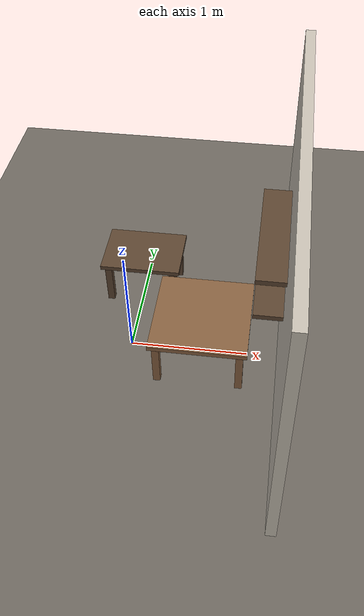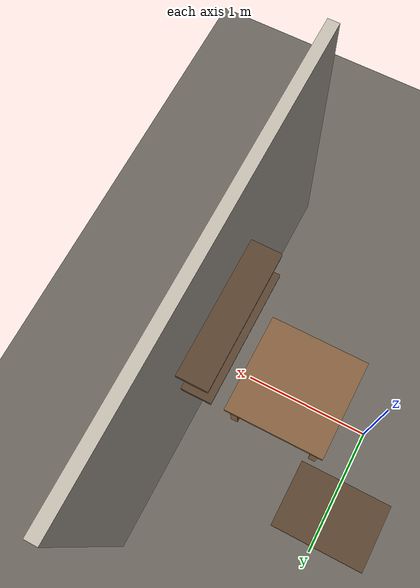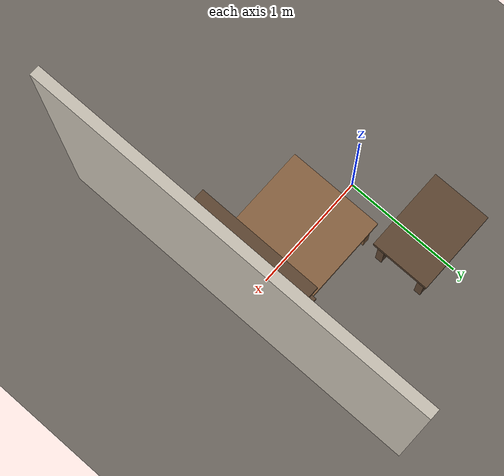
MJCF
<mujoco model="real_env_5_corner">
  <compiler angle="radian" autolimits="true" boundmass="0" balanceinertia="true"/>
  <option impratio="10" gravity="0 0 -9.8" integrator="implicitfast" cone="elliptic" jacobian="sparse" noslip_iterations="4">
    <flag multiccd="enable" contact="enable" warmstart="enable"/>
  </option>
  <size njmax="8000" nconmax="8000"/>
  <visual><global offwidth="1280" offheight="720"/><map znear="0.001"/>
    <headlight ambient="0.42 0.42 0.42" diffuse="0.55 0.55 0.55"/></visual>
  <asset>
    <texture name="woodtex" type="2d" builtin="flat" rgb1="0.53 0.38 0.25" width="32" height="32"/>
    <material name="wood" texture="woodtex" reflectance="0.05"/>
    <texture name="wood2tex" type="2d" builtin="flat" rgb1="0.36 0.27 0.19" width="32" height="32"/>
    <material name="wood2" texture="wood2tex" reflectance="0.05"/>
    <texture name="floortex" type="2d" builtin="checker" rgb1="0.46 0.44 0.41" rgb2="0.39 0.37 0.34" width="300" height="300"/>
    <material name="floormat" texture="floortex" texrepeat="10 10" reflectance="0.05"/>
  </asset>
  <default>
    <default class="furniture">
      <geom contype="8" conaffinity="15" group="0" friction="0.9 0.9 0.001"
            solref="0.02 1" solimp="0.998 0.998 0.001" density="700" material="wood"/>
    </default>
    <default class="furniture2">
      <geom contype="8" conaffinity="15" group="0" friction="0.9 0.9 0.001"
            solref="0.02 1" solimp="0.998 0.998 0.001" density="700" material="wood2"/>
    </default>
  </default>
  <worldbody>
    <light pos="0.3 0.5 2.6" dir="0 0 -1" diffuse="0.65 0.65 0.65"/>
    <light pos="-0.8 -0.8 2.2" dir="0.3 0.3 -1" diffuse="0.3 0.3 0.3"/>
    <geom name="floor" type="plane" size="5 5 0.1" pos="0 0 0" material="floormat" contype="8" conaffinity="15"/>
    <geom name="table_top" type="box" pos="0.62 0 0.44" size="0.4 0.4 0.02" class="furniture"/>
    <geom name="table_leg0" type="box" pos="0.96 0.34 0.21" size="0.03 0.03 0.21" class="furniture"/>
    <geom name="table_leg1" type="box" pos="0.96 -0.34 0.21" size="0.03 0.03 0.21" class="furniture"/>
    <geom name="table_leg2" type="box" pos="0.27999999999999997 0.34 0.21" size="0.03 0.03 0.21" class="furniture"/>
    <geom name="table_leg3" type="box" pos="0.27999999999999997 -0.34 0.21" size="0.03 0.03 0.21" class="furniture"/>
    <geom name="table_topb" type="box" pos="0.0 0.72 0.42" size="0.35 0.25 0.02" class="furniture2"/>
    <geom name="table_legb0" type="box" pos="0.29 0.9099999999999999 0.19999999999999998" size="0.03 0.03 0.19999999999999998" class="furniture2"/>
    <geom name="table_legb1" type="box" pos="0.29 0.53 0.19999999999999998" size="0.03 0.03 0.19999999999999998" class="furniture2"/>
    <geom name="table_legb2" type="box" pos="-0.29 0.9099999999999999 0.19999999999999998" size="0.03 0.03 0.19999999999999998" class="furniture2"/>
    <geom name="table_legb3" type="box" pos="-0.29 0.53 0.19999999999999998" size="0.03 0.03 0.19999999999999998" class="furniture2"/>
    <geom name="wall_back" type="box" pos="1.3 0 1.1" size="0.04 1.6 1.1" contype="8" conaffinity="15" rgba="0.78 0.75 0.70 1"/>
    <geom name="wallshelf_b1" type="box" pos="1.16 0 1.05" size="0.12 0.5 0.02" class="furniture2"/>
    <geom name="wallshelf_b2" type="box" pos="1.16 0 1.4" size="0.12 0.5 0.02" class="furniture2"/>
    <site name="target_spot" pos="0.5 0.05 0.46" size="0.01" rgba="0 0 0 0"/>
  </worldbody>
</mujoco>
